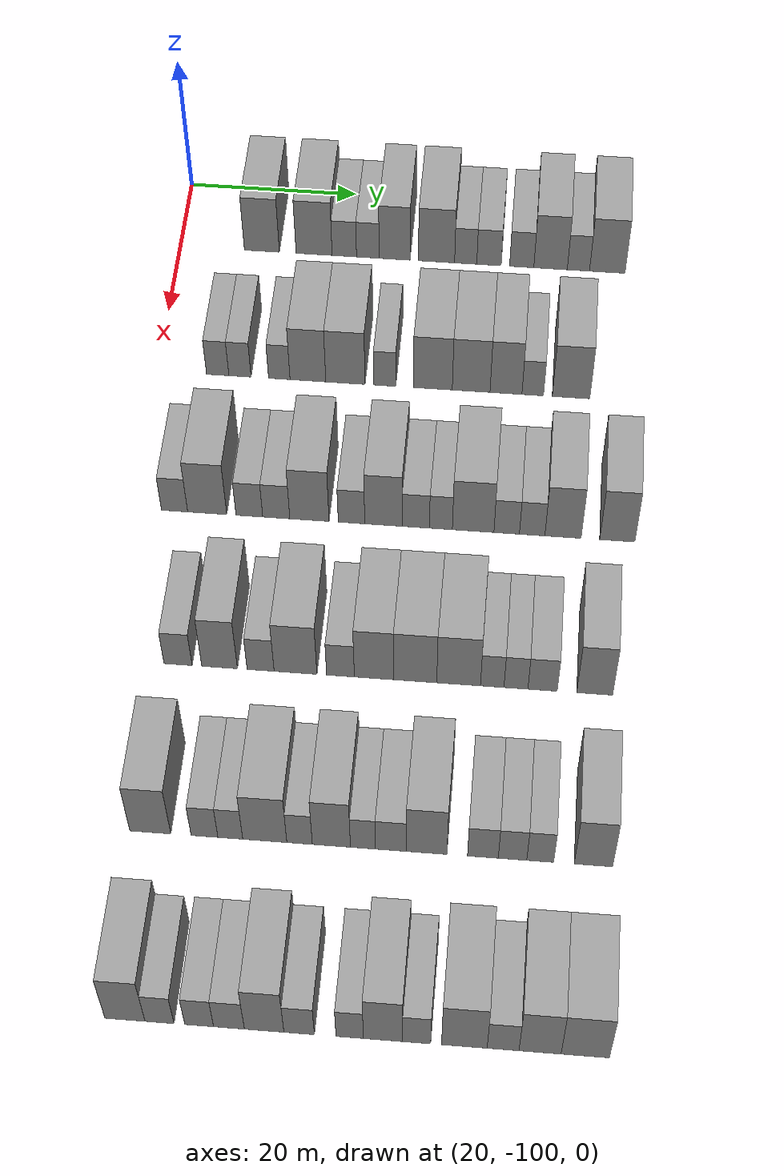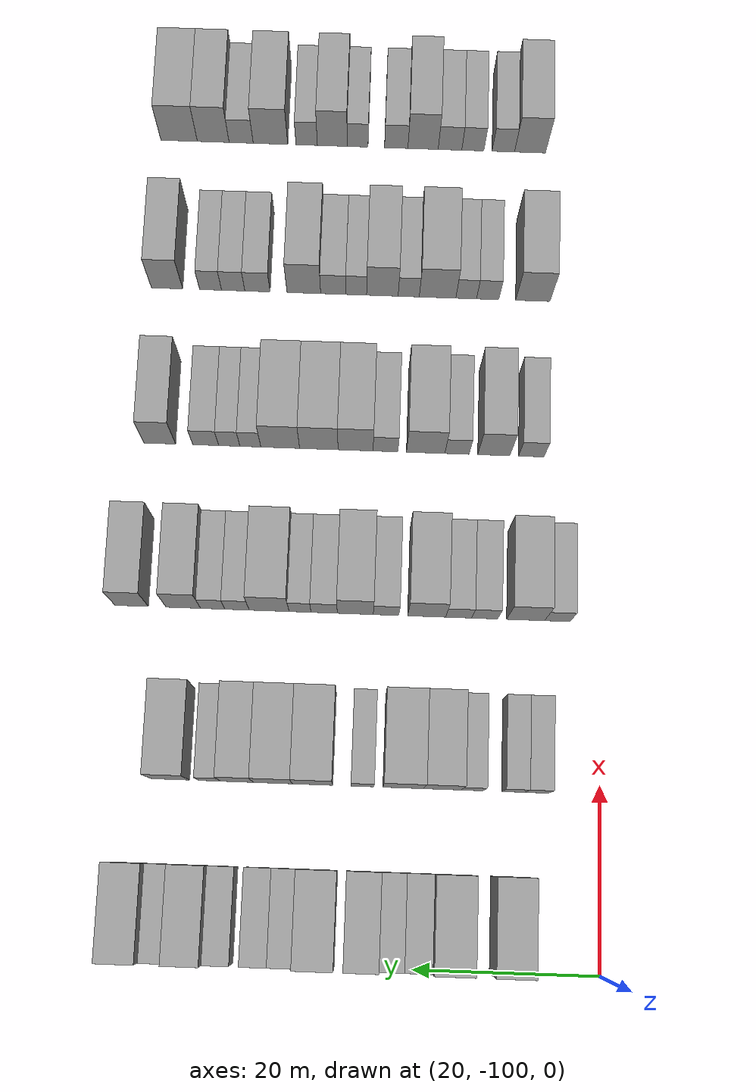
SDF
<sdf version="1.6">
 <world name="default">
  <model name="building_61">
   <static>1</static>
   <pose>25.0000 -90.3034 0 0.000000 0.000000 0.000000</pose>
   <link name="link">
    <pose>0 0 4.50 0 0 0</pose>
    <collision name="collision"><geometry><box><size>10.0000 4.1649 9.0000</size></box></geometry></collision>
    <visual name="visual">
     <cast_shadows>0</cast_shadows>
     <geometry><box><size>10.0000 4.1649 9.0000</size></box></geometry>
     <material>
      <script>
       <uri>model://grey_wall/materials/scripts</uri>
       <uri>model://grey_wall/materials/textures</uri>
       <name>vrc/grey_wall</name>
      </script>
     </material>
    </visual>
   </link>
  </model>
  <model name="building_62">
   <static>1</static>
   <pose>25.0000 -84.0807 0 0.000000 0.000000 0.000000</pose>
   <link name="link">
    <pose>0 0 4.50 0 0 0</pose>
    <collision name="collision"><geometry><box><size>10.0000 4.2804 9.0000</size></box></geometry></collision>
    <visual name="visual">
     <cast_shadows>0</cast_shadows>
     <geometry><box><size>10.0000 4.2804 9.0000</size></box></geometry>
     <material>
      <script>
       <uri>model://grey_wall/materials/scripts</uri>
       <uri>model://grey_wall/materials/textures</uri>
       <name>vrc/grey_wall</name>
      </script>
     </material>
    </visual>
   </link>
  </model>
  <model name="building_63">
   <static>1</static>
   <pose>25.0000 -80.4880 0 0.000000 0.000000 0.000000</pose>
   <link name="link">
    <pose>0 0 3.00 0 0 0</pose>
    <collision name="collision"><geometry><box><size>10.0000 2.9050 6.0000</size></box></geometry></collision>
    <visual name="visual">
     <cast_shadows>0</cast_shadows>
     <geometry><box><size>10.0000 2.9050 6.0000</size></box></geometry>
     <material>
      <script>
       <uri>model://grey_wall/materials/scripts</uri>
       <uri>model://grey_wall/materials/textures</uri>
       <name>vrc/grey_wall</name>
      </script>
     </material>
    </visual>
   </link>
  </model>
  <model name="building_64">
   <static>1</static>
   <pose>25.0000 -77.6878 0 0.000000 0.000000 0.000000</pose>
   <link name="link">
    <pose>0 0 3.00 0 0 0</pose>
    <collision name="collision"><geometry><box><size>10.0000 2.6953 6.0000</size></box></geometry></collision>
    <visual name="visual">
     <cast_shadows>0</cast_shadows>
     <geometry><box><size>10.0000 2.6953 6.0000</size></box></geometry>
     <material>
      <script>
       <uri>model://grey_wall/materials/scripts</uri>
       <uri>model://grey_wall/materials/textures</uri>
       <name>vrc/grey_wall</name>
      </script>
     </material>
    </visual>
   </link>
  </model>
  <model name="building_65">
   <static>1</static>
   <pose>25.0000 -74.5116 0 0.000000 0.000000 0.000000</pose>
   <link name="link">
    <pose>0 0 4.50 0 0 0</pose>
    <collision name="collision"><geometry><box><size>10.0000 3.6572 9.0000</size></box></geometry></collision>
    <visual name="visual">
     <cast_shadows>0</cast_shadows>
     <geometry><box><size>10.0000 3.6572 9.0000</size></box></geometry>
     <material>
      <script>
       <uri>model://grey_wall/materials/scripts</uri>
       <uri>model://grey_wall/materials/textures</uri>
       <name>vrc/grey_wall</name>
      </script>
     </material>
    </visual>
   </link>
  </model>
  <model name="building_66">
   <static>1</static>
   <pose>25.0000 -69.5431 0 0.000000 0.000000 0.000000</pose>
   <link name="link">
    <pose>0 0 4.50 0 0 0</pose>
    <collision name="collision"><geometry><box><size>10.0000 4.2797 9.0000</size></box></geometry></collision>
    <visual name="visual">
     <cast_shadows>0</cast_shadows>
     <geometry><box><size>10.0000 4.2797 9.0000</size></box></geometry>
     <material>
      <script>
       <uri>model://grey_wall/materials/scripts</uri>
       <uri>model://grey_wall/materials/textures</uri>
       <name>vrc/grey_wall</name>
      </script>
     </material>
    </visual>
   </link>
  </model>
  <model name="building_67">
   <static>1</static>
   <pose>25.0000 -66.0903 0 0.000000 0.000000 0.000000</pose>
   <link name="link">
    <pose>0 0 3.00 0 0 0</pose>
    <collision name="collision"><geometry><box><size>10.0000 2.6259 6.0000</size></box></geometry></collision>
    <visual name="visual">
     <cast_shadows>0</cast_shadows>
     <geometry><box><size>10.0000 2.6259 6.0000</size></box></geometry>
     <material>
      <script>
       <uri>model://grey_wall/materials/scripts</uri>
       <uri>model://grey_wall/materials/textures</uri>
       <name>vrc/grey_wall</name>
      </script>
     </material>
    </visual>
   </link>
  </model>
  <model name="building_68">
   <static>1</static>
   <pose>25.0000 -63.3361 0 0.000000 0.000000 0.000000</pose>
   <link name="link">
    <pose>0 0 3.00 0 0 0</pose>
    <collision name="collision"><geometry><box><size>10.0000 2.8825 6.0000</size></box></geometry></collision>
    <visual name="visual">
     <cast_shadows>0</cast_shadows>
     <geometry><box><size>10.0000 2.8825 6.0000</size></box></geometry>
     <material>
      <script>
       <uri>model://grey_wall/materials/scripts</uri>
       <uri>model://grey_wall/materials/textures</uri>
       <name>vrc/grey_wall</name>
      </script>
     </material>
    </visual>
   </link>
  </model>
  <model name="building_69">
   <static>1</static>
   <pose>25.0000 -59.4682 0 0.000000 0.000000 0.000000</pose>
   <link name="link">
    <pose>0 0 3.00 0 0 0</pose>
    <collision name="collision"><geometry><box><size>10.0000 2.8532 6.0000</size></box></geometry></collision>
    <visual name="visual">
     <cast_shadows>0</cast_shadows>
     <geometry><box><size>10.0000 2.8532 6.0000</size></box></geometry>
     <material>
      <script>
       <uri>model://grey_wall/materials/scripts</uri>
       <uri>model://grey_wall/materials/textures</uri>
       <name>vrc/grey_wall</name>
      </script>
     </material>
    </visual>
   </link>
  </model>
  <model name="building_70">
   <static>1</static>
   <pose>25.0000 -56.0699 0 0.000000 0.000000 0.000000</pose>
   <link name="link">
    <pose>0 0 4.50 0 0 0</pose>
    <collision name="collision"><geometry><box><size>10.0000 3.9436 9.0000</size></box></geometry></collision>
    <visual name="visual">
     <cast_shadows>0</cast_shadows>
     <geometry><box><size>10.0000 3.9436 9.0000</size></box></geometry>
     <material>
      <script>
       <uri>model://grey_wall/materials/scripts</uri>
       <uri>model://grey_wall/materials/textures</uri>
       <name>vrc/grey_wall</name>
      </script>
     </material>
    </visual>
   </link>
  </model>
  <model name="building_71">
   <static>1</static>
   <pose>25.0000 -52.7900 0 0.000000 0.000000 0.000000</pose>
   <link name="link">
    <pose>0 0 3.00 0 0 0</pose>
    <collision name="collision"><geometry><box><size>10.0000 2.6162 6.0000</size></box></geometry></collision>
    <visual name="visual">
     <cast_shadows>0</cast_shadows>
     <geometry><box><size>10.0000 2.6162 6.0000</size></box></geometry>
     <material>
      <script>
       <uri>model://grey_wall/materials/scripts</uri>
       <uri>model://grey_wall/materials/textures</uri>
       <name>vrc/grey_wall</name>
      </script>
     </material>
    </visual>
   </link>
  </model>
  <model name="building_72">
   <static>1</static>
   <pose>25.0000 -49.3965 0 0.000000 0.000000 0.000000</pose>
   <link name="link">
    <pose>0 0 4.50 0 0 0</pose>
    <collision name="collision"><geometry><box><size>10.0000 4.1708 9.0000</size></box></geometry></collision>
    <visual name="visual">
     <cast_shadows>0</cast_shadows>
     <geometry><box><size>10.0000 4.1708 9.0000</size></box></geometry>
     <material>
      <script>
       <uri>model://grey_wall/materials/scripts</uri>
       <uri>model://grey_wall/materials/textures</uri>
       <name>vrc/grey_wall</name>
      </script>
     </material>
    </visual>
   </link>
  </model>
  <model name="building_235">
   <static>1</static>
   <pose>44.0000 -93.0726 0 0.000000 0.000000 0.000000</pose>
   <link name="link">
    <pose>0 0 3.00 0 0 0</pose>
    <collision name="collision"><geometry><box><size>10.0000 2.5501 6.0000</size></box></geometry></collision>
    <visual name="visual">
     <cast_shadows>0</cast_shadows>
     <geometry><box><size>10.0000 2.5501 6.0000</size></box></geometry>
     <material>
      <script>
       <uri>model://grey_wall/materials/scripts</uri>
       <uri>model://grey_wall/materials/textures</uri>
       <name>vrc/grey_wall</name>
      </script>
     </material>
    </visual>
   </link>
  </model>
  <model name="building_236">
   <static>1</static>
   <pose>44.0000 -90.5318 0 0.000000 0.000000 0.000000</pose>
   <link name="link">
    <pose>0 0 3.00 0 0 0</pose>
    <collision name="collision"><geometry><box><size>10.0000 2.5314 6.0000</size></box></geometry></collision>
    <visual name="visual">
     <cast_shadows>0</cast_shadows>
     <geometry><box><size>10.0000 2.5314 6.0000</size></box></geometry>
     <material>
      <script>
       <uri>model://grey_wall/materials/scripts</uri>
       <uri>model://grey_wall/materials/textures</uri>
       <name>vrc/grey_wall</name>
      </script>
     </material>
    </visual>
   </link>
  </model>
  <model name="building_237">
   <static>1</static>
   <pose>44.0000 -86.0445 0 0.000000 0.000000 0.000000</pose>
   <link name="link">
    <pose>0 0 3.00 0 0 0</pose>
    <collision name="collision"><geometry><box><size>10.0000 2.4433 6.0000</size></box></geometry></collision>
    <visual name="visual">
     <cast_shadows>0</cast_shadows>
     <geometry><box><size>10.0000 2.4433 6.0000</size></box></geometry>
     <material>
      <script>
       <uri>model://grey_wall/materials/scripts</uri>
       <uri>model://grey_wall/materials/textures</uri>
       <name>vrc/grey_wall</name>
      </script>
     </material>
    </visual>
   </link>
  </model>
  <model name="building_238">
   <static>1</static>
   <pose>44.0000 -82.7851 0 0.000000 0.000000 0.000000</pose>
   <link name="link">
    <pose>0 0 4.50 0 0 0</pose>
    <collision name="collision"><geometry><box><size>10.0000 4.0754 9.0000</size></box></geometry></collision>
    <visual name="visual">
     <cast_shadows>0</cast_shadows>
     <geometry><box><size>10.0000 4.0754 9.0000</size></box></geometry>
     <material>
      <script>
       <uri>model://grey_wall/materials/scripts</uri>
       <uri>model://grey_wall/materials/textures</uri>
       <name>vrc/grey_wall</name>
      </script>
     </material>
    </visual>
   </link>
  </model>
  <model name="building_239">
   <static>1</static>
   <pose>44.0000 -78.5192 0 0.000000 0.000000 0.000000</pose>
   <link name="link">
    <pose>0 0 4.50 0 0 0</pose>
    <collision name="collision"><geometry><box><size>10.0000 4.4563 9.0000</size></box></geometry></collision>
    <visual name="visual">
     <cast_shadows>0</cast_shadows>
     <geometry><box><size>10.0000 4.4563 9.0000</size></box></geometry>
     <material>
      <script>
       <uri>model://grey_wall/materials/scripts</uri>
       <uri>model://grey_wall/materials/textures</uri>
       <name>vrc/grey_wall</name>
      </script>
     </material>
    </visual>
   </link>
  </model>
  <model name="building_240">
   <static>1</static>
   <pose>44.0000 -74.0498 0 0.000000 0.000000 0.000000</pose>
   <link name="link">
    <pose>0 0 3.00 0 0 0</pose>
    <collision name="collision"><geometry><box><size>10.0000 2.4825 6.0000</size></box></geometry></collision>
    <visual name="visual">
     <cast_shadows>0</cast_shadows>
     <geometry><box><size>10.0000 2.4825 6.0000</size></box></geometry>
     <material>
      <script>
       <uri>model://grey_wall/materials/scripts</uri>
       <uri>model://grey_wall/materials/textures</uri>
       <name>vrc/grey_wall</name>
      </script>
     </material>
    </visual>
   </link>
  </model>
  <model name="building_241">
   <static>1</static>
   <pose>44.0000 -68.6111 0 0.000000 0.000000 0.000000</pose>
   <link name="link">
    <pose>0 0 4.50 0 0 0</pose>
    <collision name="collision"><geometry><box><size>10.0000 4.3949 9.0000</size></box></geometry></collision>
    <visual name="visual">
     <cast_shadows>0</cast_shadows>
     <geometry><box><size>10.0000 4.3949 9.0000</size></box></geometry>
     <material>
      <script>
       <uri>model://grey_wall/materials/scripts</uri>
       <uri>model://grey_wall/materials/textures</uri>
       <name>vrc/grey_wall</name>
      </script>
     </material>
    </visual>
   </link>
  </model>
  <model name="building_242">
   <static>1</static>
   <pose>44.0000 -64.2810 0 0.000000 0.000000 0.000000</pose>
   <link name="link">
    <pose>0 0 4.50 0 0 0</pose>
    <collision name="collision"><geometry><box><size>10.0000 4.2653 9.0000</size></box></geometry></collision>
    <visual name="visual">
     <cast_shadows>0</cast_shadows>
     <geometry><box><size>10.0000 4.2653 9.0000</size></box></geometry>
     <material>
      <script>
       <uri>model://grey_wall/materials/scripts</uri>
       <uri>model://grey_wall/materials/textures</uri>
       <name>vrc/grey_wall</name>
      </script>
     </material>
    </visual>
   </link>
  </model>
  <model name="building_243">
   <static>1</static>
   <pose>44.0000 -60.3481 0 0.000000 0.000000 0.000000</pose>
   <link name="link">
    <pose>0 0 4.50 0 0 0</pose>
    <collision name="collision"><geometry><box><size>10.0000 3.6004 9.0000</size></box></geometry></collision>
    <visual name="visual">
     <cast_shadows>0</cast_shadows>
     <geometry><box><size>10.0000 3.6004 9.0000</size></box></geometry>
     <material>
      <script>
       <uri>model://grey_wall/materials/scripts</uri>
       <uri>model://grey_wall/materials/textures</uri>
       <name>vrc/grey_wall</name>
      </script>
     </material>
    </visual>
   </link>
  </model>
  <model name="building_244">
   <static>1</static>
   <pose>44.0000 -57.3349 0 0.000000 0.000000 0.000000</pose>
   <link name="link">
    <pose>0 0 3.00 0 0 0</pose>
    <collision name="collision"><geometry><box><size>10.0000 2.4258 6.0000</size></box></geometry></collision>
    <visual name="visual">
     <cast_shadows>0</cast_shadows>
     <geometry><box><size>10.0000 2.4258 6.0000</size></box></geometry>
     <material>
      <script>
       <uri>model://grey_wall/materials/scripts</uri>
       <uri>model://grey_wall/materials/textures</uri>
       <name>vrc/grey_wall</name>
      </script>
     </material>
    </visual>
   </link>
  </model>
  <model name="building_245">
   <static>1</static>
   <pose>44.0000 -53.0179 0 0.000000 0.000000 0.000000</pose>
   <link name="link">
    <pose>0 0 4.50 0 0 0</pose>
    <collision name="collision"><geometry><box><size>10.0000 4.2082 9.0000</size></box></geometry></collision>
    <visual name="visual">
     <cast_shadows>0</cast_shadows>
     <geometry><box><size>10.0000 4.2082 9.0000</size></box></geometry>
     <material>
      <script>
       <uri>model://grey_wall/materials/scripts</uri>
       <uri>model://grey_wall/materials/textures</uri>
       <name>vrc/grey_wall</name>
      </script>
     </material>
    </visual>
   </link>
  </model>
  <model name="building_415">
   <static>1</static>
   <pose>63.0000 -95.2642 0 0.000000 0.000000 0.000000</pose>
   <link name="link">
    <pose>0 0 3.00 0 0 0</pose>
    <collision name="collision"><geometry><box><size>10.0000 2.8566 6.0000</size></box></geometry></collision>
    <visual name="visual">
     <cast_shadows>0</cast_shadows>
     <geometry><box><size>10.0000 2.8566 6.0000</size></box></geometry>
     <material>
      <script>
       <uri>model://grey_wall/materials/scripts</uri>
       <uri>model://grey_wall/materials/textures</uri>
       <name>vrc/grey_wall</name>
      </script>
     </material>
    </visual>
   </link>
  </model>
  <model name="building_416">
   <static>1</static>
   <pose>63.0000 -91.7037 0 0.000000 0.000000 0.000000</pose>
   <link name="link">
    <pose>0 0 4.50 0 0 0</pose>
    <collision name="collision"><geometry><box><size>10.0000 4.2643 9.0000</size></box></geometry></collision>
    <visual name="visual">
     <cast_shadows>0</cast_shadows>
     <geometry><box><size>10.0000 4.2643 9.0000</size></box></geometry>
     <material>
      <script>
       <uri>model://grey_wall/materials/scripts</uri>
       <uri>model://grey_wall/materials/textures</uri>
       <name>vrc/grey_wall</name>
      </script>
     </material>
    </visual>
   </link>
  </model>
  <model name="building_417">
   <static>1</static>
   <pose>63.0000 -87.1186 0 0.000000 0.000000 0.000000</pose>
   <link name="link">
    <pose>0 0 3.00 0 0 0</pose>
    <collision name="collision"><geometry><box><size>10.0000 2.9060 6.0000</size></box></geometry></collision>
    <visual name="visual">
     <cast_shadows>0</cast_shadows>
     <geometry><box><size>10.0000 2.9060 6.0000</size></box></geometry>
     <material>
      <script>
       <uri>model://grey_wall/materials/scripts</uri>
       <uri>model://grey_wall/materials/textures</uri>
       <name>vrc/grey_wall</name>
      </script>
     </material>
    </visual>
   </link>
  </model>
  <model name="building_418">
   <static>1</static>
   <pose>63.0000 -84.1952 0 0.000000 0.000000 0.000000</pose>
   <link name="link">
    <pose>0 0 3.00 0 0 0</pose>
    <collision name="collision"><geometry><box><size>10.0000 2.9407 6.0000</size></box></geometry></collision>
    <visual name="visual">
     <cast_shadows>0</cast_shadows>
     <geometry><box><size>10.0000 2.9407 6.0000</size></box></geometry>
     <material>
      <script>
       <uri>model://grey_wall/materials/scripts</uri>
       <uri>model://grey_wall/materials/textures</uri>
       <name>vrc/grey_wall</name>
      </script>
     </material>
    </visual>
   </link>
  </model>
  <model name="building_419">
   <static>1</static>
   <pose>63.0000 -80.5950 0 0.000000 0.000000 0.000000</pose>
   <link name="link">
    <pose>0 0 4.50 0 0 0</pose>
    <collision name="collision"><geometry><box><size>10.0000 4.2596 9.0000</size></box></geometry></collision>
    <visual name="visual">
     <cast_shadows>0</cast_shadows>
     <geometry><box><size>10.0000 4.2596 9.0000</size></box></geometry>
     <material>
      <script>
       <uri>model://grey_wall/materials/scripts</uri>
       <uri>model://grey_wall/materials/textures</uri>
       <name>vrc/grey_wall</name>
      </script>
     </material>
    </visual>
   </link>
  </model>
  <model name="building_420">
   <static>1</static>
   <pose>63.0000 -76.0301 0 0.000000 0.000000 0.000000</pose>
   <link name="link">
    <pose>0 0 3.00 0 0 0</pose>
    <collision name="collision"><geometry><box><size>10.0000 2.8703 6.0000</size></box></geometry></collision>
    <visual name="visual">
     <cast_shadows>0</cast_shadows>
     <geometry><box><size>10.0000 2.8703 6.0000</size></box></geometry>
     <material>
      <script>
       <uri>model://grey_wall/materials/scripts</uri>
       <uri>model://grey_wall/materials/textures</uri>
       <name>vrc/grey_wall</name>
      </script>
     </material>
    </visual>
   </link>
  </model>
  <model name="building_421">
   <static>1</static>
   <pose>63.0000 -72.5789 0 0.000000 0.000000 0.000000</pose>
   <link name="link">
    <pose>0 0 4.50 0 0 0</pose>
    <collision name="collision"><geometry><box><size>10.0000 4.0320 9.0000</size></box></geometry></collision>
    <visual name="visual">
     <cast_shadows>0</cast_shadows>
     <geometry><box><size>10.0000 4.0320 9.0000</size></box></geometry>
     <material>
      <script>
       <uri>model://grey_wall/materials/scripts</uri>
       <uri>model://grey_wall/materials/textures</uri>
       <name>vrc/grey_wall</name>
      </script>
     </material>
    </visual>
   </link>
  </model>
  <model name="building_422">
   <static>1</static>
   <pose>63.0000 -69.0862 0 0.000000 0.000000 0.000000</pose>
   <link name="link">
    <pose>0 0 3.00 0 0 0</pose>
    <collision name="collision"><geometry><box><size>10.0000 2.9534 6.0000</size></box></geometry></collision>
    <visual name="visual">
     <cast_shadows>0</cast_shadows>
     <geometry><box><size>10.0000 2.9534 6.0000</size></box></geometry>
     <material>
      <script>
       <uri>model://grey_wall/materials/scripts</uri>
       <uri>model://grey_wall/materials/textures</uri>
       <name>vrc/grey_wall</name>
      </script>
     </material>
    </visual>
   </link>
  </model>
  <model name="building_423">
   <static>1</static>
   <pose>63.0000 -66.3754 0 0.000000 0.000000 0.000000</pose>
   <link name="link">
    <pose>0 0 3.00 0 0 0</pose>
    <collision name="collision"><geometry><box><size>10.0000 2.4684 6.0000</size></box></geometry></collision>
    <visual name="visual">
     <cast_shadows>0</cast_shadows>
     <geometry><box><size>10.0000 2.4684 6.0000</size></box></geometry>
     <material>
      <script>
       <uri>model://grey_wall/materials/scripts</uri>
       <uri>model://grey_wall/materials/textures</uri>
       <name>vrc/grey_wall</name>
      </script>
     </material>
    </visual>
   </link>
  </model>
  <model name="building_424">
   <static>1</static>
   <pose>63.0000 -62.9030 0 0.000000 0.000000 0.000000</pose>
   <link name="link">
    <pose>0 0 4.50 0 0 0</pose>
    <collision name="collision"><geometry><box><size>10.0000 4.4764 9.0000</size></box></geometry></collision>
    <visual name="visual">
     <cast_shadows>0</cast_shadows>
     <geometry><box><size>10.0000 4.4764 9.0000</size></box></geometry>
     <material>
      <script>
       <uri>model://grey_wall/materials/scripts</uri>
       <uri>model://grey_wall/materials/textures</uri>
       <name>vrc/grey_wall</name>
      </script>
     </material>
    </visual>
   </link>
  </model>
  <model name="building_425">
   <static>1</static>
   <pose>63.0000 -59.2940 0 0.000000 0.000000 0.000000</pose>
   <link name="link">
    <pose>0 0 3.00 0 0 0</pose>
    <collision name="collision"><geometry><box><size>10.0000 2.7416 6.0000</size></box></geometry></collision>
    <visual name="visual">
     <cast_shadows>0</cast_shadows>
     <geometry><box><size>10.0000 2.7416 6.0000</size></box></geometry>
     <material>
      <script>
       <uri>model://grey_wall/materials/scripts</uri>
       <uri>model://grey_wall/materials/textures</uri>
       <name>vrc/grey_wall</name>
      </script>
     </material>
    </visual>
   </link>
  </model>
  <model name="building_426">
   <static>1</static>
   <pose>63.0000 -56.5559 0 0.000000 0.000000 0.000000</pose>
   <link name="link">
    <pose>0 0 3.00 0 0 0</pose>
    <collision name="collision"><geometry><box><size>10.0000 2.7346 6.0000</size></box></geometry></collision>
    <visual name="visual">
     <cast_shadows>0</cast_shadows>
     <geometry><box><size>10.0000 2.7346 6.0000</size></box></geometry>
     <material>
      <script>
       <uri>model://grey_wall/materials/scripts</uri>
       <uri>model://grey_wall/materials/textures</uri>
       <name>vrc/grey_wall</name>
      </script>
     </material>
    </visual>
   </link>
  </model>
  <model name="building_427">
   <static>1</static>
   <pose>63.0000 -53.2498 0 0.000000 0.000000 0.000000</pose>
   <link name="link">
    <pose>0 0 4.50 0 0 0</pose>
    <collision name="collision"><geometry><box><size>10.0000 3.8777 9.0000</size></box></geometry></collision>
    <visual name="visual">
     <cast_shadows>0</cast_shadows>
     <geometry><box><size>10.0000 3.8777 9.0000</size></box></geometry>
     <material>
      <script>
       <uri>model://grey_wall/materials/scripts</uri>
       <uri>model://grey_wall/materials/textures</uri>
       <name>vrc/grey_wall</name>
      </script>
     </material>
    </visual>
   </link>
  </model>
  <model name="building_428">
   <static>1</static>
   <pose>63.0000 -47.4342 0 0.000000 0.000000 0.000000</pose>
   <link name="link">
    <pose>0 0 4.50 0 0 0</pose>
    <collision name="collision"><geometry><box><size>10.0000 3.7534 9.0000</size></box></geometry></collision>
    <visual name="visual">
     <cast_shadows>0</cast_shadows>
     <geometry><box><size>10.0000 3.7534 9.0000</size></box></geometry>
     <material>
      <script>
       <uri>model://grey_wall/materials/scripts</uri>
       <uri>model://grey_wall/materials/textures</uri>
       <name>vrc/grey_wall</name>
      </script>
     </material>
    </visual>
   </link>
  </model>
  <model name="building_578">
   <static>1</static>
   <pose>82.0000 -92.1573 0 0.000000 0.000000 0.000000</pose>
   <link name="link">
    <pose>0 0 3.00 0 0 0</pose>
    <collision name="collision"><geometry><box><size>10.0000 2.9142 6.0000</size></box></geometry></collision>
    <visual name="visual">
     <cast_shadows>0</cast_shadows>
     <geometry><box><size>10.0000 2.9142 6.0000</size></box></geometry>
     <material>
      <script>
       <uri>model://grey_wall/materials/scripts</uri>
       <uri>model://grey_wall/materials/textures</uri>
       <name>vrc/grey_wall</name>
      </script>
     </material>
    </visual>
   </link>
  </model>
  <model name="building_579">
   <static>1</static>
   <pose>82.0000 -87.8530 0 0.000000 0.000000 0.000000</pose>
   <link name="link">
    <pose>0 0 4.50 0 0 0</pose>
    <collision name="collision"><geometry><box><size>10.0000 3.6945 9.0000</size></box></geometry></collision>
    <visual name="visual">
     <cast_shadows>0</cast_shadows>
     <geometry><box><size>10.0000 3.6945 9.0000</size></box></geometry>
     <material>
      <script>
       <uri>model://grey_wall/materials/scripts</uri>
       <uri>model://grey_wall/materials/textures</uri>
       <name>vrc/grey_wall</name>
      </script>
     </material>
    </visual>
   </link>
  </model>
  <model name="building_580">
   <static>1</static>
   <pose>82.0000 -83.6117 0 0.000000 0.000000 0.000000</pose>
   <link name="link">
    <pose>0 0 3.00 0 0 0</pose>
    <collision name="collision"><geometry><box><size>10.0000 2.7881 6.0000</size></box></geometry></collision>
    <visual name="visual">
     <cast_shadows>0</cast_shadows>
     <geometry><box><size>10.0000 2.7881 6.0000</size></box></geometry>
     <material>
      <script>
       <uri>model://grey_wall/materials/scripts</uri>
       <uri>model://grey_wall/materials/textures</uri>
       <name>vrc/grey_wall</name>
      </script>
     </material>
    </visual>
   </link>
  </model>
  <model name="building_581">
   <static>1</static>
   <pose>82.0000 -80.0061 0 0.000000 0.000000 0.000000</pose>
   <link name="link">
    <pose>0 0 4.50 0 0 0</pose>
    <collision name="collision"><geometry><box><size>10.0000 4.4232 9.0000</size></box></geometry></collision>
    <visual name="visual">
     <cast_shadows>0</cast_shadows>
     <geometry><box><size>10.0000 4.4232 9.0000</size></box></geometry>
     <material>
      <script>
       <uri>model://grey_wall/materials/scripts</uri>
       <uri>model://grey_wall/materials/textures</uri>
       <name>vrc/grey_wall</name>
      </script>
     </material>
    </visual>
   </link>
  </model>
  <model name="building_582">
   <static>1</static>
   <pose>82.0000 -75.3676 0 0.000000 0.000000 0.000000</pose>
   <link name="link">
    <pose>0 0 3.00 0 0 0</pose>
    <collision name="collision"><geometry><box><size>10.0000 2.8538 6.0000</size></box></geometry></collision>
    <visual name="visual">
     <cast_shadows>0</cast_shadows>
     <geometry><box><size>10.0000 2.8538 6.0000</size></box></geometry>
     <material>
      <script>
       <uri>model://grey_wall/materials/scripts</uri>
       <uri>model://grey_wall/materials/textures</uri>
       <name>vrc/grey_wall</name>
      </script>
     </material>
    </visual>
   </link>
  </model>
  <model name="building_583">
   <static>1</static>
   <pose>82.0000 -71.9261 0 0.000000 0.000000 0.000000</pose>
   <link name="link">
    <pose>0 0 4.50 0 0 0</pose>
    <collision name="collision"><geometry><box><size>10.0000 4.0294 9.0000</size></box></geometry></collision>
    <visual name="visual">
     <cast_shadows>0</cast_shadows>
     <geometry><box><size>10.0000 4.0294 9.0000</size></box></geometry>
     <material>
      <script>
       <uri>model://grey_wall/materials/scripts</uri>
       <uri>model://grey_wall/materials/textures</uri>
       <name>vrc/grey_wall</name>
      </script>
     </material>
    </visual>
   </link>
  </model>
  <model name="building_584">
   <static>1</static>
   <pose>82.0000 -67.6950 0 0.000000 0.000000 0.000000</pose>
   <link name="link">
    <pose>0 0 4.50 0 0 0</pose>
    <collision name="collision"><geometry><box><size>10.0000 4.4327 9.0000</size></box></geometry></collision>
    <visual name="visual">
     <cast_shadows>0</cast_shadows>
     <geometry><box><size>10.0000 4.4327 9.0000</size></box></geometry>
     <material>
      <script>
       <uri>model://grey_wall/materials/scripts</uri>
       <uri>model://grey_wall/materials/textures</uri>
       <name>vrc/grey_wall</name>
      </script>
     </material>
    </visual>
   </link>
  </model>
  <model name="building_585">
   <static>1</static>
   <pose>82.0000 -63.2413 0 0.000000 0.000000 0.000000</pose>
   <link name="link">
    <pose>0 0 4.50 0 0 0</pose>
    <collision name="collision"><geometry><box><size>10.0000 4.4748 9.0000</size></box></geometry></collision>
    <visual name="visual">
     <cast_shadows>0</cast_shadows>
     <geometry><box><size>10.0000 4.4748 9.0000</size></box></geometry>
     <material>
      <script>
       <uri>model://grey_wall/materials/scripts</uri>
       <uri>model://grey_wall/materials/textures</uri>
       <name>vrc/grey_wall</name>
      </script>
     </material>
    </visual>
   </link>
  </model>
  <model name="building_586">
   <static>1</static>
   <pose>82.0000 -59.7991 0 0.000000 0.000000 0.000000</pose>
   <link name="link">
    <pose>0 0 3.00 0 0 0</pose>
    <collision name="collision"><geometry><box><size>10.0000 2.4095 6.0000</size></box></geometry></collision>
    <visual name="visual">
     <cast_shadows>0</cast_shadows>
     <geometry><box><size>10.0000 2.4095 6.0000</size></box></geometry>
     <material>
      <script>
       <uri>model://grey_wall/materials/scripts</uri>
       <uri>model://grey_wall/materials/textures</uri>
       <name>vrc/grey_wall</name>
      </script>
     </material>
    </visual>
   </link>
  </model>
  <model name="building_587">
   <static>1</static>
   <pose>82.0000 -57.3724 0 0.000000 0.000000 0.000000</pose>
   <link name="link">
    <pose>0 0 3.00 0 0 0</pose>
    <collision name="collision"><geometry><box><size>10.0000 2.4440 6.0000</size></box></geometry></collision>
    <visual name="visual">
     <cast_shadows>0</cast_shadows>
     <geometry><box><size>10.0000 2.4440 6.0000</size></box></geometry>
     <material>
      <script>
       <uri>model://grey_wall/materials/scripts</uri>
       <uri>model://grey_wall/materials/textures</uri>
       <name>vrc/grey_wall</name>
      </script>
     </material>
    </visual>
   </link>
  </model>
  <model name="building_588">
   <static>1</static>
   <pose>82.0000 -54.6553 0 0.000000 0.000000 0.000000</pose>
   <link name="link">
    <pose>0 0 3.00 0 0 0</pose>
    <collision name="collision"><geometry><box><size>10.0000 2.9901 6.0000</size></box></geometry></collision>
    <visual name="visual">
     <cast_shadows>0</cast_shadows>
     <geometry><box><size>10.0000 2.9901 6.0000</size></box></geometry>
     <material>
      <script>
       <uri>model://grey_wall/materials/scripts</uri>
       <uri>model://grey_wall/materials/textures</uri>
       <name>vrc/grey_wall</name>
      </script>
     </material>
    </visual>
   </link>
  </model>
  <model name="building_589">
   <static>1</static>
   <pose>82.0000 -49.3370 0 0.000000 0.000000 0.000000</pose>
   <link name="link">
    <pose>0 0 4.50 0 0 0</pose>
    <collision name="collision"><geometry><box><size>10.0000 3.6465 9.0000</size></box></geometry></collision>
    <visual name="visual">
     <cast_shadows>0</cast_shadows>
     <geometry><box><size>10.0000 3.6465 9.0000</size></box></geometry>
     <material>
      <script>
       <uri>model://grey_wall/materials/scripts</uri>
       <uri>model://grey_wall/materials/textures</uri>
       <name>vrc/grey_wall</name>
      </script>
     </material>
    </visual>
   </link>
  </model>
  <model name="building_752">
   <static>1</static>
   <pose>101.0000 -92.1665 0 0.000000 0.000000 0.000000</pose>
   <link name="link">
    <pose>0 0 4.50 0 0 0</pose>
    <collision name="collision"><geometry><box><size>10.0000 4.0377 9.0000</size></box></geometry></collision>
    <visual name="visual">
     <cast_shadows>0</cast_shadows>
     <geometry><box><size>10.0000 4.0377 9.0000</size></box></geometry>
     <material>
      <script>
       <uri>model://grey_wall/materials/scripts</uri>
       <uri>model://grey_wall/materials/textures</uri>
       <name>vrc/grey_wall</name>
      </script>
     </material>
    </visual>
   </link>
  </model>
  <model name="building_753">
   <static>1</static>
   <pose>101.0000 -86.8346 0 0.000000 0.000000 0.000000</pose>
   <link name="link">
    <pose>0 0 3.00 0 0 0</pose>
    <collision name="collision"><geometry><box><size>10.0000 2.6260 6.0000</size></box></geometry></collision>
    <visual name="visual">
     <cast_shadows>0</cast_shadows>
     <geometry><box><size>10.0000 2.6260 6.0000</size></box></geometry>
     <material>
      <script>
       <uri>model://grey_wall/materials/scripts</uri>
       <uri>model://grey_wall/materials/textures</uri>
       <name>vrc/grey_wall</name>
      </script>
     </material>
    </visual>
   </link>
  </model>
  <model name="building_754">
   <static>1</static>
   <pose>101.0000 -84.2998 0 0.000000 0.000000 0.000000</pose>
   <link name="link">
    <pose>0 0 3.00 0 0 0</pose>
    <collision name="collision"><geometry><box><size>10.0000 2.4434 6.0000</size></box></geometry></collision>
    <visual name="visual">
     <cast_shadows>0</cast_shadows>
     <geometry><box><size>10.0000 2.4434 6.0000</size></box></geometry>
     <material>
      <script>
       <uri>model://grey_wall/materials/scripts</uri>
       <uri>model://grey_wall/materials/textures</uri>
       <name>vrc/grey_wall</name>
      </script>
     </material>
    </visual>
   </link>
  </model>
  <model name="building_755">
   <static>1</static>
   <pose>101.0000 -80.9184 0 0.000000 0.000000 0.000000</pose>
   <link name="link">
    <pose>0 0 4.50 0 0 0</pose>
    <collision name="collision"><geometry><box><size>10.0000 4.3195 9.0000</size></box></geometry></collision>
    <visual name="visual">
     <cast_shadows>0</cast_shadows>
     <geometry><box><size>10.0000 4.3195 9.0000</size></box></geometry>
     <material>
      <script>
       <uri>model://grey_wall/materials/scripts</uri>
       <uri>model://grey_wall/materials/textures</uri>
       <name>vrc/grey_wall</name>
      </script>
     </material>
    </visual>
   </link>
  </model>
  <model name="building_756">
   <static>1</static>
   <pose>101.0000 -77.5113 0 0.000000 0.000000 0.000000</pose>
   <link name="link">
    <pose>0 0 3.00 0 0 0</pose>
    <collision name="collision"><geometry><box><size>10.0000 2.4947 6.0000</size></box></geometry></collision>
    <visual name="visual">
     <cast_shadows>0</cast_shadows>
     <geometry><box><size>10.0000 2.4947 6.0000</size></box></geometry>
     <material>
      <script>
       <uri>model://grey_wall/materials/scripts</uri>
       <uri>model://grey_wall/materials/textures</uri>
       <name>vrc/grey_wall</name>
      </script>
     </material>
    </visual>
   </link>
  </model>
  <model name="building_757">
   <static>1</static>
   <pose>101.0000 -74.4019 0 0.000000 0.000000 0.000000</pose>
   <link name="link">
    <pose>0 0 4.50 0 0 0</pose>
    <collision name="collision"><geometry><box><size>10.0000 3.7242 9.0000</size></box></geometry></collision>
    <visual name="visual">
     <cast_shadows>0</cast_shadows>
     <geometry><box><size>10.0000 3.7242 9.0000</size></box></geometry>
     <material>
      <script>
       <uri>model://grey_wall/materials/scripts</uri>
       <uri>model://grey_wall/materials/textures</uri>
       <name>vrc/grey_wall</name>
      </script>
     </material>
    </visual>
   </link>
  </model>
  <model name="building_758">
   <static>1</static>
   <pose>101.0000 -71.3175 0 0.000000 0.000000 0.000000</pose>
   <link name="link">
    <pose>0 0 3.00 0 0 0</pose>
    <collision name="collision"><geometry><box><size>10.0000 2.4446 6.0000</size></box></geometry></collision>
    <visual name="visual">
     <cast_shadows>0</cast_shadows>
     <geometry><box><size>10.0000 2.4446 6.0000</size></box></geometry>
     <material>
      <script>
       <uri>model://grey_wall/materials/scripts</uri>
       <uri>model://grey_wall/materials/textures</uri>
       <name>vrc/grey_wall</name>
      </script>
     </material>
    </visual>
   </link>
  </model>
  <model name="building_759">
   <static>1</static>
   <pose>101.0000 -68.6049 0 0.000000 0.000000 0.000000</pose>
   <link name="link">
    <pose>0 0 3.00 0 0 0</pose>
    <collision name="collision"><geometry><box><size>10.0000 2.9805 6.0000</size></box></geometry></collision>
    <visual name="visual">
     <cast_shadows>0</cast_shadows>
     <geometry><box><size>10.0000 2.9805 6.0000</size></box></geometry>
     <material>
      <script>
       <uri>model://grey_wall/materials/scripts</uri>
       <uri>model://grey_wall/materials/textures</uri>
       <name>vrc/grey_wall</name>
      </script>
     </material>
    </visual>
   </link>
  </model>
  <model name="building_760">
   <static>1</static>
   <pose>101.0000 -65.1283 0 0.000000 0.000000 0.000000</pose>
   <link name="link">
    <pose>0 0 4.50 0 0 0</pose>
    <collision name="collision"><geometry><box><size>10.0000 3.9728 9.0000</size></box></geometry></collision>
    <visual name="visual">
     <cast_shadows>0</cast_shadows>
     <geometry><box><size>10.0000 3.9728 9.0000</size></box></geometry>
     <material>
      <script>
       <uri>model://grey_wall/materials/scripts</uri>
       <uri>model://grey_wall/materials/textures</uri>
       <name>vrc/grey_wall</name>
      </script>
     </material>
    </visual>
   </link>
  </model>
  <model name="building_761">
   <static>1</static>
   <pose>101.0000 -59.6487 0 0.000000 0.000000 0.000000</pose>
   <link name="link">
    <pose>0 0 3.00 0 0 0</pose>
    <collision name="collision"><geometry><box><size>10.0000 2.9864 6.0000</size></box></geometry></collision>
    <visual name="visual">
     <cast_shadows>0</cast_shadows>
     <geometry><box><size>10.0000 2.9864 6.0000</size></box></geometry>
     <material>
      <script>
       <uri>model://grey_wall/materials/scripts</uri>
       <uri>model://grey_wall/materials/textures</uri>
       <name>vrc/grey_wall</name>
      </script>
     </material>
    </visual>
   </link>
  </model>
  <model name="building_762">
   <static>1</static>
   <pose>101.0000 -56.7765 0 0.000000 0.000000 0.000000</pose>
   <link name="link">
    <pose>0 0 3.00 0 0 0</pose>
    <collision name="collision"><geometry><box><size>10.0000 2.7580 6.0000</size></box></geometry></collision>
    <visual name="visual">
     <cast_shadows>0</cast_shadows>
     <geometry><box><size>10.0000 2.7580 6.0000</size></box></geometry>
     <material>
      <script>
       <uri>model://grey_wall/materials/scripts</uri>
       <uri>model://grey_wall/materials/textures</uri>
       <name>vrc/grey_wall</name>
      </script>
     </material>
    </visual>
   </link>
  </model>
  <model name="building_763">
   <static>1</static>
   <pose>101.0000 -54.0975 0 0.000000 0.000000 0.000000</pose>
   <link name="link">
    <pose>0 0 3.00 0 0 0</pose>
    <collision name="collision"><geometry><box><size>10.0000 2.6001 6.0000</size></box></geometry></collision>
    <visual name="visual">
     <cast_shadows>0</cast_shadows>
     <geometry><box><size>10.0000 2.6001 6.0000</size></box></geometry>
     <material>
      <script>
       <uri>model://grey_wall/materials/scripts</uri>
       <uri>model://grey_wall/materials/textures</uri>
       <name>vrc/grey_wall</name>
      </script>
     </material>
    </visual>
   </link>
  </model>
  <model name="building_764">
   <static>1</static>
   <pose>101.0000 -48.9473 0 0.000000 0.000000 0.000000</pose>
   <link name="link">
    <pose>0 0 4.50 0 0 0</pose>
    <collision name="collision"><geometry><box><size>10.0000 3.7001 9.0000</size></box></geometry></collision>
    <visual name="visual">
     <cast_shadows>0</cast_shadows>
     <geometry><box><size>10.0000 3.7001 9.0000</size></box></geometry>
     <material>
      <script>
       <uri>model://grey_wall/materials/scripts</uri>
       <uri>model://grey_wall/materials/textures</uri>
       <name>vrc/grey_wall</name>
      </script>
     </material>
    </visual>
   </link>
  </model>
  <model name="building_925">
   <static>1</static>
   <pose>120.0000 -91.6541 0 0.000000 0.000000 0.000000</pose>
   <link name="link">
    <pose>0 0 4.50 0 0 0</pose>
    <collision name="collision"><geometry><box><size>10.0000 3.7418 9.0000</size></box></geometry></collision>
    <visual name="visual">
     <cast_shadows>0</cast_shadows>
     <geometry><box><size>10.0000 3.7418 9.0000</size></box></geometry>
     <material>
      <script>
       <uri>model://grey_wall/materials/scripts</uri>
       <uri>model://grey_wall/materials/textures</uri>
       <name>vrc/grey_wall</name>
      </script>
     </material>
    </visual>
   </link>
  </model>
  <model name="building_926">
   <static>1</static>
   <pose>120.0000 -88.4304 0 0.000000 0.000000 0.000000</pose>
   <link name="link">
    <pose>0 0 3.00 0 0 0</pose>
    <collision name="collision"><geometry><box><size>10.0000 2.7055 6.0000</size></box></geometry></collision>
    <visual name="visual">
     <cast_shadows>0</cast_shadows>
     <geometry><box><size>10.0000 2.7055 6.0000</size></box></geometry>
     <material>
      <script>
       <uri>model://grey_wall/materials/scripts</uri>
       <uri>model://grey_wall/materials/textures</uri>
       <name>vrc/grey_wall</name>
      </script>
     </material>
    </visual>
   </link>
  </model>
  <model name="building_927">
   <static>1</static>
   <pose>120.0000 -84.7426 0 0.000000 0.000000 0.000000</pose>
   <link name="link">
    <pose>0 0 3.00 0 0 0</pose>
    <collision name="collision"><geometry><box><size>10.0000 2.6701 6.0000</size></box></geometry></collision>
    <visual name="visual">
     <cast_shadows>0</cast_shadows>
     <geometry><box><size>10.0000 2.6701 6.0000</size></box></geometry>
     <material>
      <script>
       <uri>model://grey_wall/materials/scripts</uri>
       <uri>model://grey_wall/materials/textures</uri>
       <name>vrc/grey_wall</name>
      </script>
     </material>
    </visual>
   </link>
  </model>
  <model name="building_928">
   <static>1</static>
   <pose>120.0000 -81.9767 0 0.000000 0.000000 0.000000</pose>
   <link name="link">
    <pose>0 0 3.00 0 0 0</pose>
    <collision name="collision"><geometry><box><size>10.0000 2.8618 6.0000</size></box></geometry></collision>
    <visual name="visual">
     <cast_shadows>0</cast_shadows>
     <geometry><box><size>10.0000 2.8618 6.0000</size></box></geometry>
     <material>
      <script>
       <uri>model://grey_wall/materials/scripts</uri>
       <uri>model://grey_wall/materials/textures</uri>
       <name>vrc/grey_wall</name>
      </script>
     </material>
    </visual>
   </link>
  </model>
  <model name="building_929">
   <static>1</static>
   <pose>120.0000 -78.7161 0 0.000000 0.000000 0.000000</pose>
   <link name="link">
    <pose>0 0 4.50 0 0 0</pose>
    <collision name="collision"><geometry><box><size>10.0000 3.6594 9.0000</size></box></geometry></collision>
    <visual name="visual">
     <cast_shadows>0</cast_shadows>
     <geometry><box><size>10.0000 3.6594 9.0000</size></box></geometry>
     <material>
      <script>
       <uri>model://grey_wall/materials/scripts</uri>
       <uri>model://grey_wall/materials/textures</uri>
       <name>vrc/grey_wall</name>
      </script>
     </material>
    </visual>
   </link>
  </model>
  <model name="building_930">
   <static>1</static>
   <pose>120.0000 -75.4750 0 0.000000 0.000000 0.000000</pose>
   <link name="link">
    <pose>0 0 3.00 0 0 0</pose>
    <collision name="collision"><geometry><box><size>10.0000 2.8229 6.0000</size></box></geometry></collision>
    <visual name="visual">
     <cast_shadows>0</cast_shadows>
     <geometry><box><size>10.0000 2.8229 6.0000</size></box></geometry>
     <material>
      <script>
       <uri>model://grey_wall/materials/scripts</uri>
       <uri>model://grey_wall/materials/textures</uri>
       <name>vrc/grey_wall</name>
      </script>
     </material>
    </visual>
   </link>
  </model>
  <model name="building_931">
   <static>1</static>
   <pose>120.0000 -70.8002 0 0.000000 0.000000 0.000000</pose>
   <link name="link">
    <pose>0 0 3.00 0 0 0</pose>
    <collision name="collision"><geometry><box><size>10.0000 2.5267 6.0000</size></box></geometry></collision>
    <visual name="visual">
     <cast_shadows>0</cast_shadows>
     <geometry><box><size>10.0000 2.5267 6.0000</size></box></geometry>
     <material>
      <script>
       <uri>model://grey_wall/materials/scripts</uri>
       <uri>model://grey_wall/materials/textures</uri>
       <name>vrc/grey_wall</name>
      </script>
     </material>
    </visual>
   </link>
  </model>
  <model name="building_932">
   <static>1</static>
   <pose>120.0000 -67.7336 0 0.000000 0.000000 0.000000</pose>
   <link name="link">
    <pose>0 0 4.50 0 0 0</pose>
    <collision name="collision"><geometry><box><size>10.0000 3.6064 9.0000</size></box></geometry></collision>
    <visual name="visual">
     <cast_shadows>0</cast_shadows>
     <geometry><box><size>10.0000 3.6064 9.0000</size></box></geometry>
     <material>
      <script>
       <uri>model://grey_wall/materials/scripts</uri>
       <uri>model://grey_wall/materials/textures</uri>
       <name>vrc/grey_wall</name>
      </script>
     </material>
    </visual>
   </link>
  </model>
  <model name="building_933">
   <static>1</static>
   <pose>120.0000 -64.6371 0 0.000000 0.000000 0.000000</pose>
   <link name="link">
    <pose>0 0 3.00 0 0 0</pose>
    <collision name="collision"><geometry><box><size>10.0000 2.5866 6.0000</size></box></geometry></collision>
    <visual name="visual">
     <cast_shadows>0</cast_shadows>
     <geometry><box><size>10.0000 2.5866 6.0000</size></box></geometry>
     <material>
      <script>
       <uri>model://grey_wall/materials/scripts</uri>
       <uri>model://grey_wall/materials/textures</uri>
       <name>vrc/grey_wall</name>
      </script>
     </material>
    </visual>
   </link>
  </model>
  <model name="building_934">
   <static>1</static>
   <pose>120.0000 -60.2500 0 0.000000 0.000000 0.000000</pose>
   <link name="link">
    <pose>0 0 4.50 0 0 0</pose>
    <collision name="collision"><geometry><box><size>10.0000 4.1876 9.0000</size></box></geometry></collision>
    <visual name="visual">
     <cast_shadows>0</cast_shadows>
     <geometry><box><size>10.0000 4.1876 9.0000</size></box></geometry>
     <material>
      <script>
       <uri>model://grey_wall/materials/scripts</uri>
       <uri>model://grey_wall/materials/textures</uri>
       <name>vrc/grey_wall</name>
      </script>
     </material>
    </visual>
   </link>
  </model>
  <model name="building_935">
   <static>1</static>
   <pose>120.0000 -56.6970 0 0.000000 0.000000 0.000000</pose>
   <link name="link">
    <pose>0 0 3.00 0 0 0</pose>
    <collision name="collision"><geometry><box><size>10.0000 2.9185 6.0000</size></box></geometry></collision>
    <visual name="visual">
     <cast_shadows>0</cast_shadows>
     <geometry><box><size>10.0000 2.9185 6.0000</size></box></geometry>
     <material>
      <script>
       <uri>model://grey_wall/materials/scripts</uri>
       <uri>model://grey_wall/materials/textures</uri>
       <name>vrc/grey_wall</name>
      </script>
     </material>
    </visual>
   </link>
  </model>
  <model name="building_936">
   <static>1</static>
   <pose>120.0000 -53.3129 0 0.000000 0.000000 0.000000</pose>
   <link name="link">
    <pose>0 0 4.50 0 0 0</pose>
    <collision name="collision"><geometry><box><size>10.0000 3.8498 9.0000</size></box></geometry></collision>
    <visual name="visual">
     <cast_shadows>0</cast_shadows>
     <geometry><box><size>10.0000 3.8498 9.0000</size></box></geometry>
     <material>
      <script>
       <uri>model://grey_wall/materials/scripts</uri>
       <uri>model://grey_wall/materials/textures</uri>
       <name>vrc/grey_wall</name>
      </script>
     </material>
    </visual>
   </link>
  </model>
  <model name="building_937">
   <static>1</static>
   <pose>120.0000 -49.1794 0 0.000000 0.000000 0.000000</pose>
   <link name="link">
    <pose>0 0 4.50 0 0 0</pose>
    <collision name="collision"><geometry><box><size>10.0000 4.4172 9.0000</size></box></geometry></collision>
    <visual name="visual">
     <cast_shadows>0</cast_shadows>
     <geometry><box><size>10.0000 4.4172 9.0000</size></box></geometry>
     <material>
      <script>
       <uri>model://grey_wall/materials/scripts</uri>
       <uri>model://grey_wall/materials/textures</uri>
       <name>vrc/grey_wall</name>
      </script>
     </material>
    </visual>
   </link>
  </model>
 </world>
</sdf>
